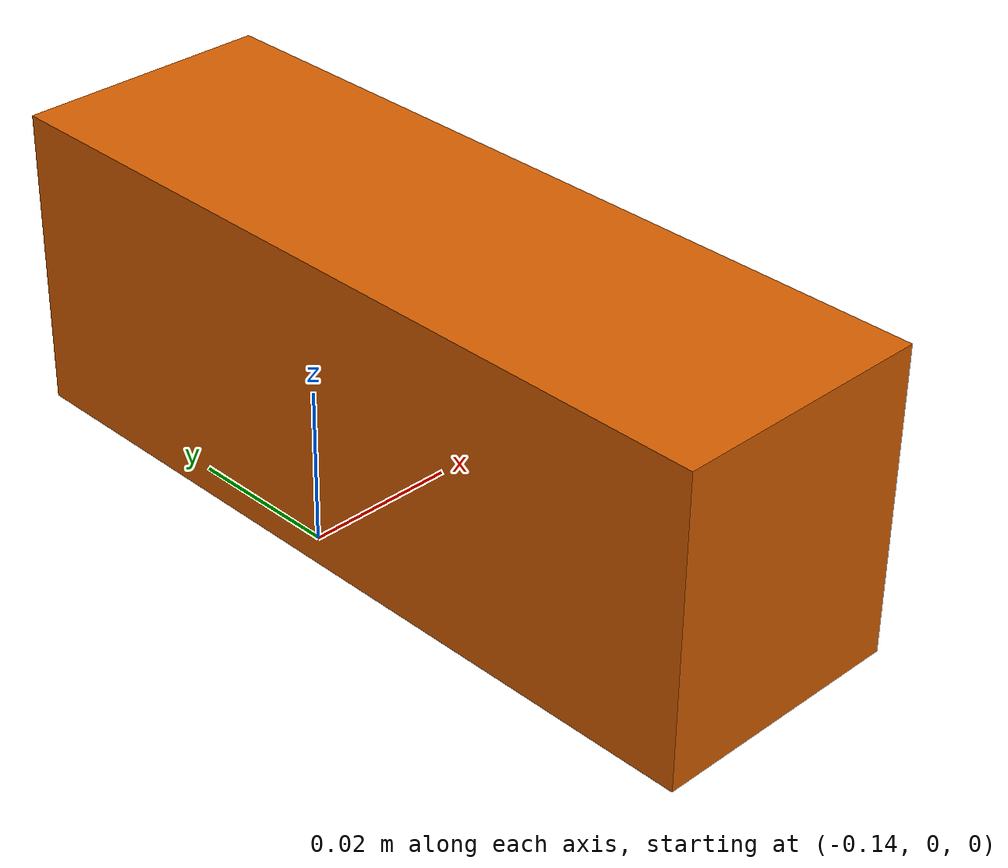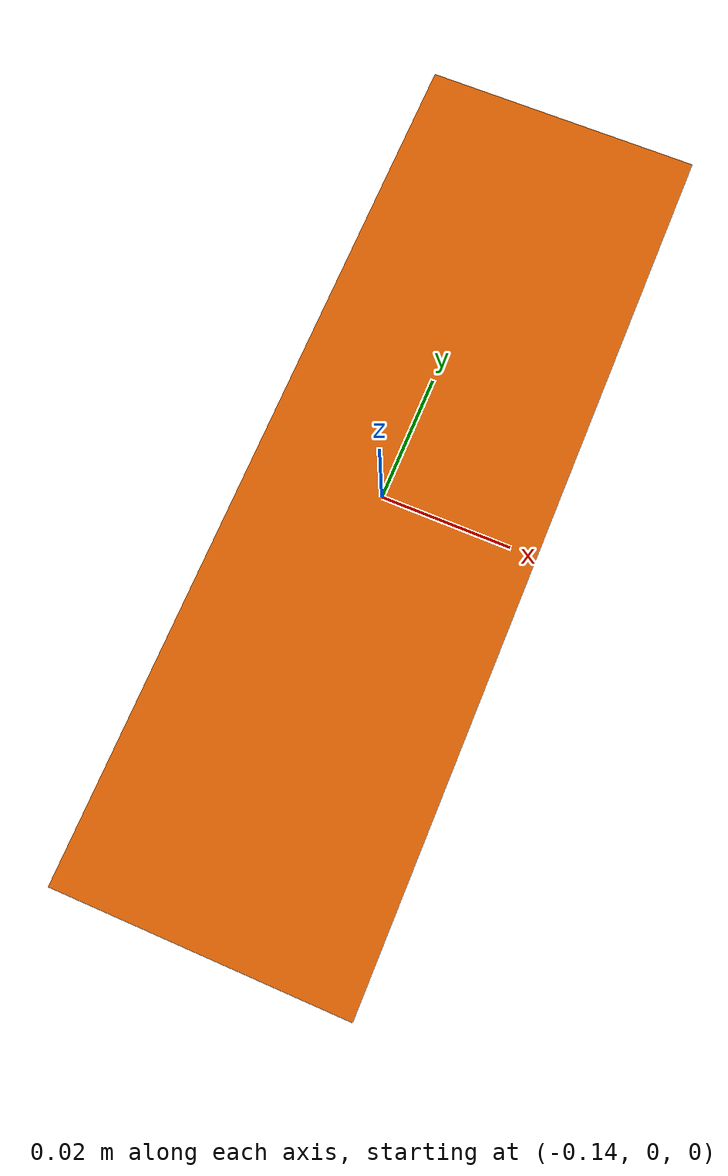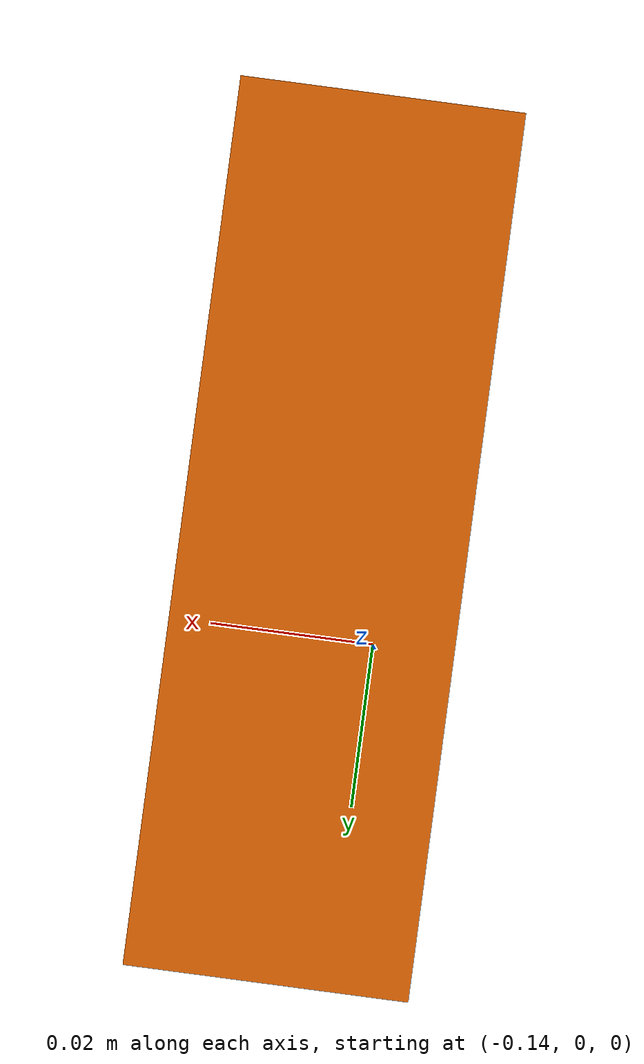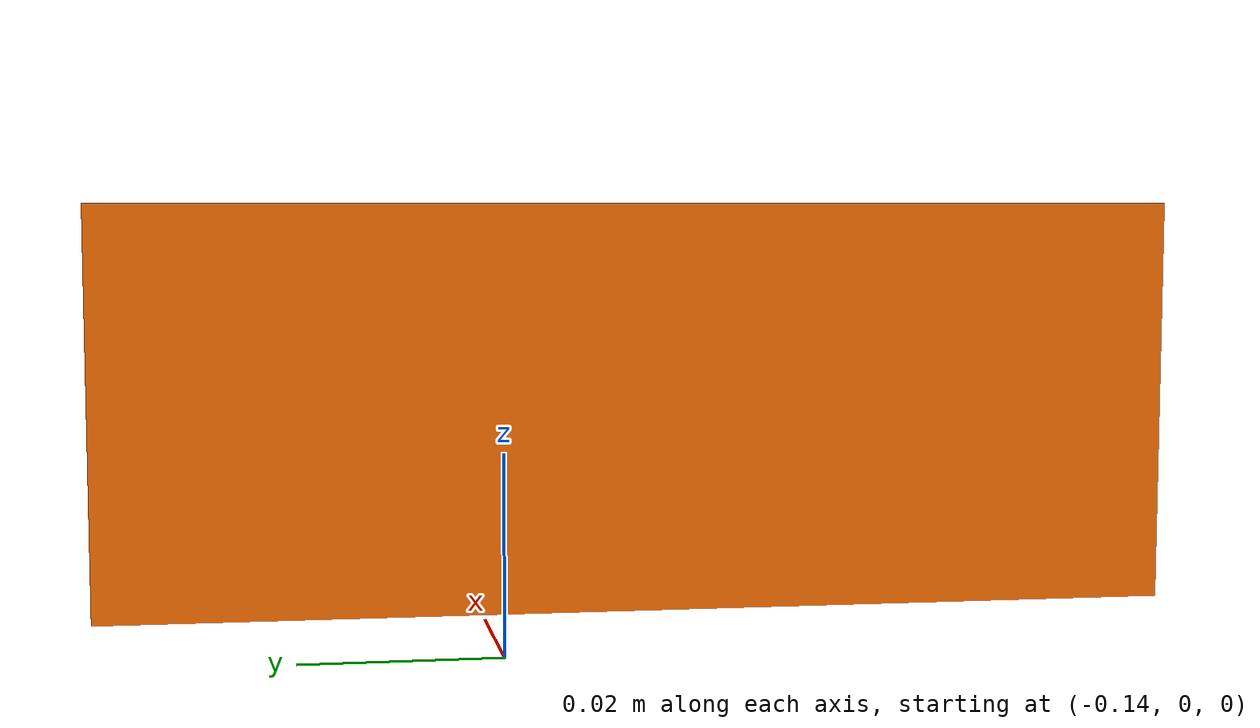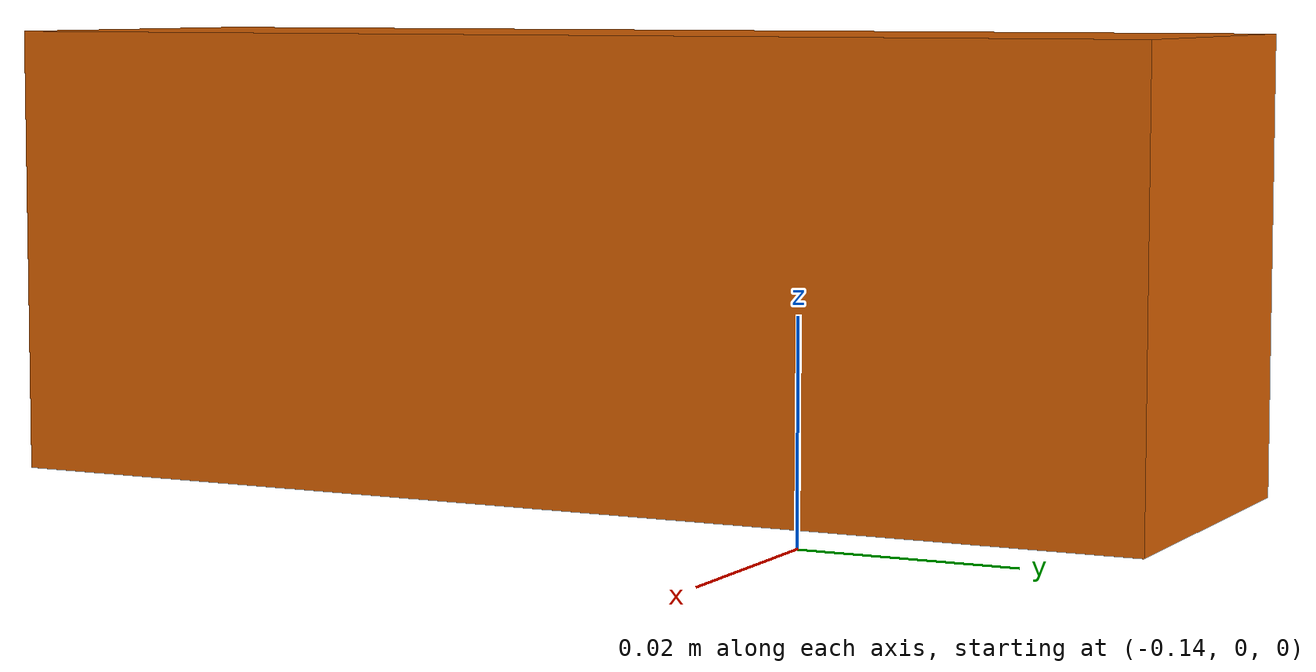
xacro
<?xml version="1.0"?>

<robot name="deimos" xmlns:xacro="http://ros.org/wiki/xacro">
  <xacro:include filename="$(find deimos)/urdf/deimos.urdf.xacro" />

  <link name="base_link" />

  <xacro:deimos_camera />

  <joint name="camera_link" type="fixed">
    <origin xyz="0 0 0" rpy="0 0 0" />
    <parent link="base_link" />
    <child link="deimos_left_mount" />
  </joint>

</robot>

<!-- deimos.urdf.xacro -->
<!--
Copyright (c) 2018, I3D Robotics Ltd.
-->

<robot xmlns:xacro="http://ros.org/wiki/xacro">

    <xacro:property name="M_PI" value="3.14159"/>

    <xacro:macro name="deimos_camera">

    <link name="cameraLeft_optical" />
    <link name="cameraRight_optical" />
    <link name="cameraLeft" />
    <link name="cameraRight" />

    <link name="deimos_center">
        <visual>
            <origin xyz="0 0 0" rpy="0 0 0"/>
            <geometry>
                <box size="0.0324 0.101 0.038"/>
                <!--mesh filename="package://deimos/urdf/deimos.stl" /-->
            </geometry>
        </visual>
    </link>

    <link name="deimos_depth_camera" />
    <link name="imu_link"/>

    <!-- M4 trisert location -->
    <link name="deimos_left_mount" />
    <link name="deimos_right_mount" />

    <!-- Deimos has a 60 mm baseline -->
    <joint name="deimos_left_mount_joint" type="fixed">
        <parent link="deimos_left_mount"/>
        <child link="deimos_center"/>
        <origin xyz="-0.13241 -${-0.017875+0.03} 0.025" rpy="0 0 0" />
    </joint>

    <joint name="deimos_right_mount_joint" type="fixed">
        <parent link="deimos_left_mount"/>
        <child link="deimos_right_mount"/>
        <origin xyz="0 0.03 0" rpy="0 0 0" />
    </joint>

    <joint name="deimos_right_camera_joint" type="fixed">
        <parent link="deimos_center"/>
        <child link="cameraRight"/>
        <origin xyz="0 0.03 0" rpy="0 0 0" />
    </joint>

    <joint name="deimos_left_camera_joint" type="fixed">
        <parent link="deimos_center"/>
        <child link="cameraLeft"/>
        <origin xyz="0 -0.03 0" rpy="0 0 0" />
    </joint>

    <joint name="deimos_left_optical_joint" type="fixed">
        <parent link="cameraLeft"/>
        <child link="cameraLeft_optical"/>
	<!-- Correct for the optical frame orientation -->
        <origin xyz="0 0 0" rpy="${-M_PI/2} 0 ${-M_PI/2}" />
    </joint>

    <joint name="deimos_right_optical_joint" type="fixed">
        <parent link="cameraRight"/>
        <child link="cameraRight_optical"/>
	<!-- Correct for the optical frame orientation -->
        <origin xyz="0 0 0" rpy="${-M_PI/2} 0 ${-M_PI/2}" />
    </joint>

    <joint name="deimos_depth_camera_joint" type="fixed">
        <parent link="cameraLeft"/>
        <child link="deimos_depth_camera"/>
        <origin xyz="0 0 0" rpy="0 0 0" />
    </joint>

    <!-- Correct for IMU orientation, Z -> X -->
    <joint name="imu_joint" type="fixed">
    	<origin xyz="0 0.015 -0.002" rpy="0 ${M_PI/2} 0" />
    	<parent link="deimos_center" />
    	<child link="imu_link" />
    </joint>
    </xacro:macro>

</robot>
